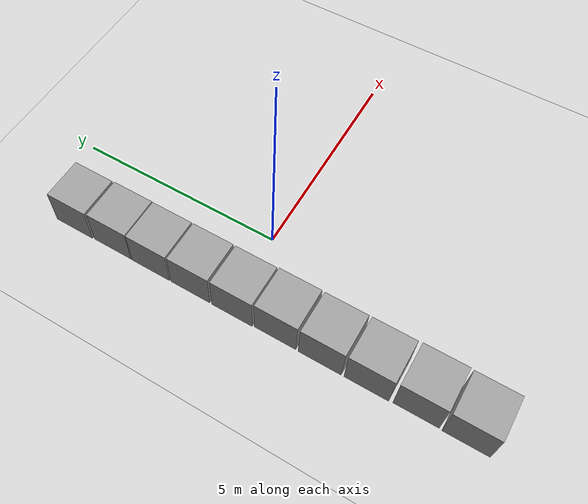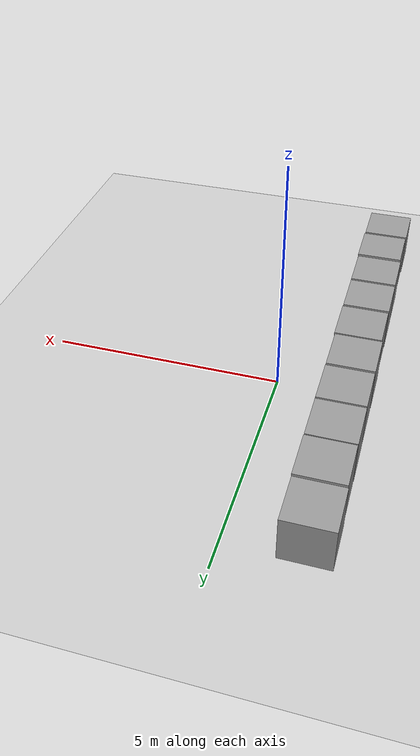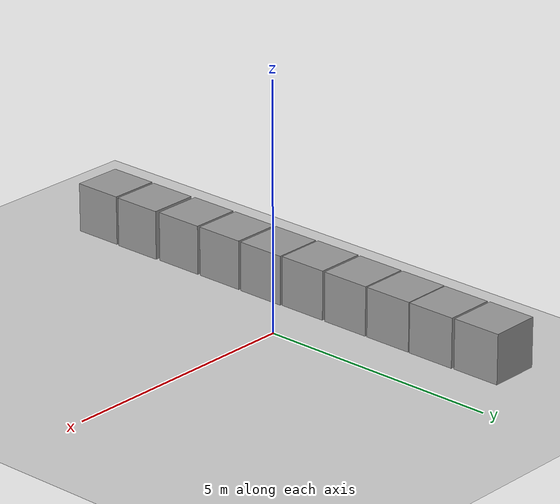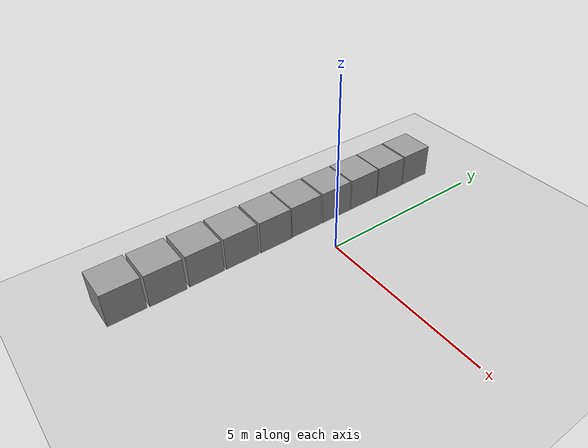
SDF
<sdf version="1.4">
 <world name="default">
  <light name="sun" type="directional">
   <pose>0 0 10 0 -0 0</pose>
   <diffuse>0.8 0.8 0.8 1</diffuse>
   <specular>0.1 0.1 0.1 1</specular>
   <attenuation>
    <range>1000</range>
    <constant>0.9</constant>
    <linear>0.01</linear>
    <quadratic>0.001</quadratic>
   </attenuation>
   <direction>-0.5 0.5 -1</direction>
  </light>
  <model name="ground_plane">
   <static>1</static>
   <link name="link">
    <collision name="collision">
     <geometry><plane><normal>0 0 1</normal><size>100 100</size></plane></geometry>
     <surface><friction><ode><mu>100</mu><mu2>50</mu2></ode></friction></surface>
    </collision>
    <visual name="visual">
     <cast_shadows>0</cast_shadows>
     <geometry><plane><normal>0 0 1</normal><size>100 100</size></plane></geometry>
     <material>
      <script><uri>file://media/materials/scripts/gazebo.material</uri><name>Gazebo/Grey</name></script>
     </material>
    </visual>
    <velocity_decay><linear>0</linear><angular>0</angular></velocity_decay>
   </link>
  </model>
  <physics type="ode">
   <gravity>0 0 -9.8</gravity>
   <real_time_update_rate>1000</real_time_update_rate>
   <max_step_size>0.001</max_step_size>
   <real_time_factor>1</real_time_factor>
  </physics>
  <scene><ambient>0.2 0.2 0.2 1</ambient><background>0.7 0.7 0.7 1</background><shadows>1</shadows></scene>
  <model name="unit_box_1">
   <pose>-1.52983 0.849019 0.5 0 -0 0</pose>
   <link name="link">
    <inertial>
     <mass>1</mass>
     <inertia><ixx>1</ixx><ixy>0</ixy><ixz>0</ixz><iyy>1</iyy><iyz>0</iyz><izz>1</izz></inertia>
    </inertial>
    <collision name="collision"><geometry><box><size>1 1 1</size></box></geometry></collision>
    <visual name="visual">
     <geometry><box><size>1 1 1</size></box></geometry>
     <material>
      <script><uri>file://media/materials/scripts/gazebo.material</uri><name>Gazebo/Grey</name></script>
     </material>
    </visual>
    <velocity_decay><linear>0</linear><angular>0</angular></velocity_decay>
   </link>
   <static>0</static>
  </model>
  <model name="unit_box_2">
   <pose>-1.53367 -0.206021 0.5 0 -0 0</pose>
   <link name="link">
    <inertial>
     <mass>1</mass>
     <inertia><ixx>1</ixx><ixy>0</ixy><ixz>0</ixz><iyy>1</iyy><iyz>0</iyz><izz>1</izz></inertia>
    </inertial>
    <collision name="collision"><geometry><box><size>1 1 1</size></box></geometry></collision>
    <visual name="visual">
     <geometry><box><size>1 1 1</size></box></geometry>
     <material>
      <script><uri>file://media/materials/scripts/gazebo.material</uri><name>Gazebo/Grey</name></script>
     </material>
    </visual>
    <velocity_decay><linear>0</linear><angular>0</angular></velocity_decay>
   </link>
   <static>0</static>
  </model>
  <model name="unit_box_3">
   <pose>-1.51458 -1.24353 0.5 0 -0 0</pose>
   <link name="link">
    <inertial>
     <mass>1</mass>
     <inertia><ixx>1</ixx><ixy>0</ixy><ixz>0</ixz><iyy>1</iyy><iyz>0</iyz><izz>1</izz></inertia>
    </inertial>
    <collision name="collision"><geometry><box><size>1 1 1</size></box></geometry></collision>
    <visual name="visual">
     <geometry><box><size>1 1 1</size></box></geometry>
     <material>
      <script><uri>file://media/materials/scripts/gazebo.material</uri><name>Gazebo/Grey</name></script>
     </material>
    </visual>
    <velocity_decay><linear>0</linear><angular>0</angular></velocity_decay>
   </link>
   <static>0</static>
  </model>
  <model name="unit_box_4">
   <pose>-1.53054 1.88848 0.5 0 -0 0</pose>
   <link name="link">
    <inertial>
     <mass>1</mass>
     <inertia><ixx>1</ixx><ixy>0</ixy><ixz>0</ixz><iyy>1</iyy><iyz>0</iyz><izz>1</izz></inertia>
    </inertial>
    <collision name="collision"><geometry><box><size>1 1 1</size></box></geometry></collision>
    <visual name="visual">
     <geometry><box><size>1 1 1</size></box></geometry>
     <material>
      <script><uri>file://media/materials/scripts/gazebo.material</uri><name>Gazebo/Grey</name></script>
     </material>
    </visual>
    <velocity_decay><linear>0</linear><angular>0</angular></velocity_decay>
   </link>
   <static>0</static>
  </model>
  <model name="unit_box_5">
   <pose>-1.5218 -2.30232 0.5 0 -0 0</pose>
   <link name="link">
    <inertial>
     <mass>1</mass>
     <inertia><ixx>1</ixx><ixy>0</ixy><ixz>0</ixz><iyy>1</iyy><iyz>0</iyz><izz>1</izz></inertia>
    </inertial>
    <collision name="collision"><geometry><box><size>1 1 1</size></box></geometry></collision>
    <visual name="visual">
     <geometry><box><size>1 1 1</size></box></geometry>
     <material>
      <script><uri>file://media/materials/scripts/gazebo.material</uri><name>Gazebo/Grey</name></script>
     </material>
    </visual>
    <velocity_decay><linear>0</linear><angular>0</angular></velocity_decay>
   </link>
   <static>0</static>
  </model>
  <model name="unit_box_6">
   <pose>-1.52004 -3.36061 0.5 0 -0 0</pose>
   <link name="link">
    <inertial>
     <mass>1</mass>
     <inertia><ixx>1</ixx><ixy>0</ixy><ixz>0</ixz><iyy>1</iyy><iyz>0</iyz><izz>1</izz></inertia>
    </inertial>
    <collision name="collision"><geometry><box><size>1 1 1</size></box></geometry></collision>
    <visual name="visual">
     <geometry><box><size>1 1 1</size></box></geometry>
     <material>
      <script><uri>file://media/materials/scripts/gazebo.material</uri><name>Gazebo/Grey</name></script>
     </material>
    </visual>
    <velocity_decay><linear>0</linear><angular>0</angular></velocity_decay>
   </link>
   <static>0</static>
  </model>
  <model name="unit_box_7">
   <pose>-1.50331 -4.44369 0.5 0 -0 0</pose>
   <link name="link">
    <inertial>
     <mass>1</mass>
     <inertia><ixx>1</ixx><ixy>0</ixy><ixz>0</ixz><iyy>1</iyy><iyz>0</iyz><izz>1</izz></inertia>
    </inertial>
    <collision name="collision"><geometry><box><size>1 1 1</size></box></geometry></collision>
    <visual name="visual">
     <geometry><box><size>1 1 1</size></box></geometry>
     <material>
      <script><uri>file://media/materials/scripts/gazebo.material</uri><name>Gazebo/Grey</name></script>
     </material>
    </visual>
    <velocity_decay><linear>0</linear><angular>0</angular></velocity_decay>
   </link>
   <static>0</static>
  </model>
  <model name="unit_box_8">
   <pose>-1.5183 -5.50601 0.5 0 -0 0</pose>
   <link name="link">
    <inertial>
     <mass>1</mass>
     <inertia><ixx>1</ixx><ixy>0</ixy><ixz>0</ixz><iyy>1</iyy><iyz>0</iyz><izz>1</izz></inertia>
    </inertial>
    <collision name="collision"><geometry><box><size>1 1 1</size></box></geometry></collision>
    <visual name="visual">
     <geometry><box><size>1 1 1</size></box></geometry>
     <material>
      <script><uri>file://media/materials/scripts/gazebo.material</uri><name>Gazebo/Grey</name></script>
     </material>
    </visual>
    <velocity_decay><linear>0</linear><angular>0</angular></velocity_decay>
   </link>
   <static>0</static>
  </model>
  <model name="unit_box_9">
   <pose>-1.52499 2.91304 0.5 0 -0 0</pose>
   <link name="link">
    <inertial>
     <mass>1</mass>
     <inertia><ixx>1</ixx><ixy>0</ixy><ixz>0</ixz><iyy>1</iyy><iyz>0</iyz><izz>1</izz></inertia>
    </inertial>
    <collision name="collision"><geometry><box><size>1 1 1</size></box></geometry></collision>
    <visual name="visual">
     <geometry><box><size>1 1 1</size></box></geometry>
     <material>
      <script><uri>file://media/materials/scripts/gazebo.material</uri><name>Gazebo/Grey</name></script>
     </material>
    </visual>
    <velocity_decay><linear>0</linear><angular>0</angular></velocity_decay>
   </link>
   <static>0</static>
  </model>
  <model name="unit_box_10">
   <pose>-1.53687 3.96448 0.5 0 -0 0</pose>
   <link name="link">
    <inertial>
     <mass>1</mass>
     <inertia><ixx>1</ixx><ixy>0</ixy><ixz>0</ixz><iyy>1</iyy><iyz>0</iyz><izz>1</izz></inertia>
    </inertial>
    <collision name="collision"><geometry><box><size>1 1 1</size></box></geometry></collision>
    <visual name="visual">
     <geometry><box><size>1 1 1</size></box></geometry>
     <material>
      <script><uri>file://media/materials/scripts/gazebo.material</uri><name>Gazebo/Grey</name></script>
     </material>
    </visual>
    <velocity_decay><linear>0</linear><angular>0</angular></velocity_decay>
   </link>
   <static>0</static>
  </model>
 </world>
</sdf>
